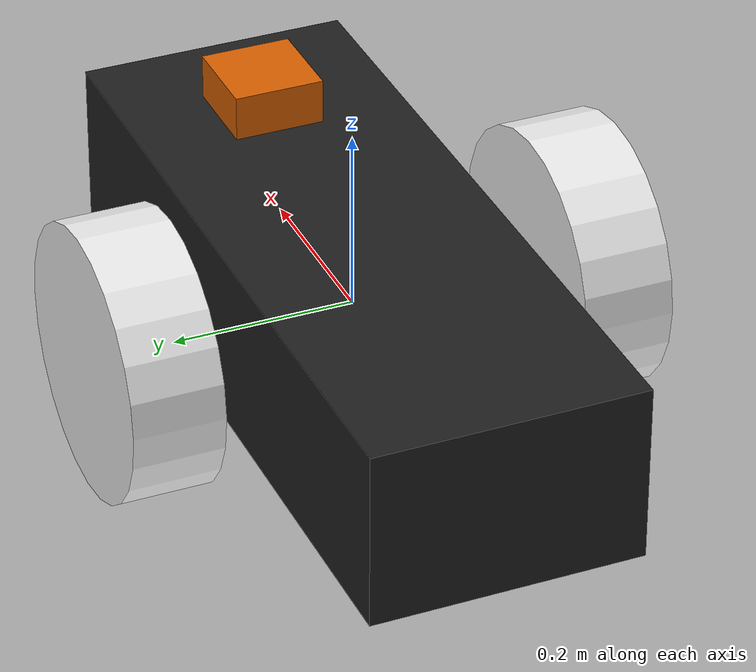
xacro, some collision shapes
<?xml version='1.0'?>

<robot name="ros_robot" xmlns:xacro="http://www.ros.org/wiki/xacro">

  <xacro:include filename="$(find ros_robot)/urdf/ros_robot.gazebo" />
  <link name="robot_footprint"></link>

  <joint name="robot_footprint_joint" type="fixed">
    <origin xyz="0 0 0" rpy="0 0 0" />
    <parent link="robot_footprint"/>
    <child link="chassis" />
  </joint>

  <link name='chassis'>
    <pose>0 0 0.1 0 0 0</pose>

    <inertial>
      <mass value="15.0"/>
      <origin xyz="0.0 0 0" rpy=" 0 0 0"/>
      <inertia
          ixx="0.1" ixy="0" ixz="0"
          iyy="0.1" iyz="0"
          izz="0.1"
      />
    </inertial>

    <collision name='collision'>
      <origin xyz="0 0 0" rpy=" 0 0 0"/>
      <geometry>
        <box size=".8 .3 .2"/>
      </geometry>
    </collision>

    <visual name='chassis_visual'>
      <origin xyz="0 0 0" rpy=" 0 0 0"/>
      <geometry>
        <box size=".8 .3 .2"/>
      </geometry>
    </visual>

    <collision name='back_caster_collision'>
      <origin xyz="-0.30 0 -0.1" rpy=" 0 0 0"/>
      <geometry>
        <sphere radius="0.0499"/>
      </geometry>
    </collision>

    <visual name='back_caster_visual'>
      <origin xyz="-0.30 0 -0.1" rpy=" 0 0 0"/>
      <geometry>
        <sphere radius="0.05"/>
      </geometry>
    </visual>

    <collision name='front_caster_collision'>
      <origin xyz="0.30 0 -0.1" rpy=" 0 0 0"/>
      <geometry>
        <sphere radius="0.0499"/>
      </geometry>
    </collision>

    <visual name='front_caster_visual'>
      <origin xyz="0.30 0 -0.1" rpy=" 0 0 0"/>
      <geometry>
        <sphere radius="0.05"/>
      </geometry>
    </visual>

  </link>

  <gazebo reference="chassis">
    <material>Gazebo/Black</material>
  </gazebo>
  <gazebo reference="left_wheel">
    <material>Gazebo/White</material>
  </gazebo>
  <gazebo reference="right_wheel">
    <material>Gazebo/White</material>
  </gazebo>
  <gazebo reference="camera">
    <material>Gazebo/DarkGrey</material>
  </gazebo>

  <link name="left_wheel">

    <visual>
	<origin xyz="0 0 0" rpy="0 1.5707 1.5707"/>
	<geometry>
	  <cylinder radius="0.15" length="0.1"/>
	</geometry>
    </visual>

    <collision>
	<origin xyz="0 0 0" rpy="0 1.5707 1.5707"/>
	<geometry>
	  <cylinder radius="0.15" length="0.1"/>
	</geometry>
    </collision>

    <inertial>
	<mass value="5"/>
	<origin xyz="0 0 0" rpy="0 1.5707 1.5707"/>
	<inertia
    	  ixx="0.1" ixy="0" ixz="0"
    	  iyy="0.1" iyz="0"
    	  izz="0.1"
	/>
    </inertial>
  </link>

  <link name="right_wheel">

    <visual>
	<origin xyz="0 0 0" rpy="0 1.5707 1.5707"/>
	<geometry>
	  <cylinder radius="0.15" length="0.1"/>
	</geometry>
    </visual>

    <collision>
	<origin xyz="0 0 0" rpy="0 1.5707 1.5707"/>
	<geometry>
	  <cylinder radius="0.15" length="0.1"/>
	</geometry>
    </collision>

    <inertial>
	<mass value="5"/>
	<origin xyz="0 0 0" rpy="0 1.5707 1.5707"/>
	<inertia
    	  ixx="0.1" ixy="0" ixz="0"
    	  iyy="0.1" iyz="0"
    	  izz="0.1"
	/>
    </inertial>
  </link>

  <joint type="continuous" name="left_wheel_hinge">
    <origin xyz="0 0.25 0" rpy="0 0 0"/>
    <child link="left_wheel"/>
    <parent link="chassis"/>
    <axis xyz="0 1 0" rpy="0 0 0"/>
    <limit effort="10000" velocity="1000"/>
    <dynamics damping="1.0" friction="1.0"/>
  </joint>

  <joint type="continuous" name="right_wheel_hinge">
    <origin xyz="0 -0.25 0" rpy="0 0 0"/>
    <child link="right_wheel"/>
    <parent link="chassis"/>
    <axis xyz="0 1 0" rpy="0 0 0"/>
    <limit effort="10000" velocity="1000"/>
    <dynamics damping="1.0" friction="1.0"/>
  </joint>

  <!-- CAMERA - LINK  -->
  <link name="camera">
  <visual>
    <origin xyz="0 0 0" rpy="0 0 0"/>
    <geometry>
      <box size="0.05 0.05 0.05"/>
    </geometry>
  </visual>

  <collision>
    <origin xyz="0 0 0" rpy="0 0 0"/>
    <geometry>
      <box size="0.05 0.05 0.05"/>
    </geometry>
  </collision>

  <inertial>
    <mass value="0.1"/>
    <origin xyz="0.05 0.05 0.05" rpy="0 0 0"/>
    <inertia
          ixx="1e-6" ixy="0" ixz="0"
          iyy="1e-6" iyz="0"
          izz="1e-6"
    />
    </inertial>

  </link>

  <!-- CAMERA - JOINT -->
  <joint type="fixed" name="camera_joint">
    <origin xyz="0.4 0 0" rpy="0 0 0"/>
    <child link="camera"/>
    <parent link="chassis"/>
    <axis xyz="0 1 0" rpy="0 0 0"/>
    <limit effort="10000" velocity="1000"/>
    <dynamics damping="1.0" friction="1.0"/>
  </joint>

  <!-- LIDAR - LINK -->
  <link name="hokuyo">
  <visual>
    <origin xyz="0 0 0" rpy="0 0 0"/>
    <geometry>
      <mesh filename="package://ros_robot/meshes/hokuyo.dae"/>
    </geometry>
  </visual>

  <collision>
    <origin xyz="0 0 0" rpy="0 0 0"/>
    <geometry>
      <box size="0.1 0.1 0.1"/>
    </geometry>
  </collision>

  <inertial>
    <mass value="1e-5"/>
    <origin xyz="0 0 0" rpy="0 0 0"/>
    <inertia
          ixx="1e-6" ixy="0" ixz="0"
          iyy="1e-6" iyz="0"
          izz="1e-6"
    />
    </inertial>

  </link>

  <!-- LIDAR - JOINT -->
  <joint type="fixed" name="hokuyo_joint">
    <origin xyz="0.25 0 0.1" rpy="0 0 0"/>
    <child link="hokuyo"/>
    <parent link="chassis"/>
    <axis xyz="0 1 0" rpy="0 0 0"/>
    <limit effort="10000" velocity="1000"/>
    <dynamics damping="1.0" friction="1.0"/>
  </joint>

  <!-- RGBD CAMERA - JOINT -->
  <joint type="fixed" name="camera_optical_joint">
    <origin xyz="0 0 0" rpy="-1.5707 0 -1.5707"/>
    <child link="camera_link_optical"/>
    <parent link="camera"/>
  </joint>

  <link name="camera_link_optical">
  </link>

</robot>
